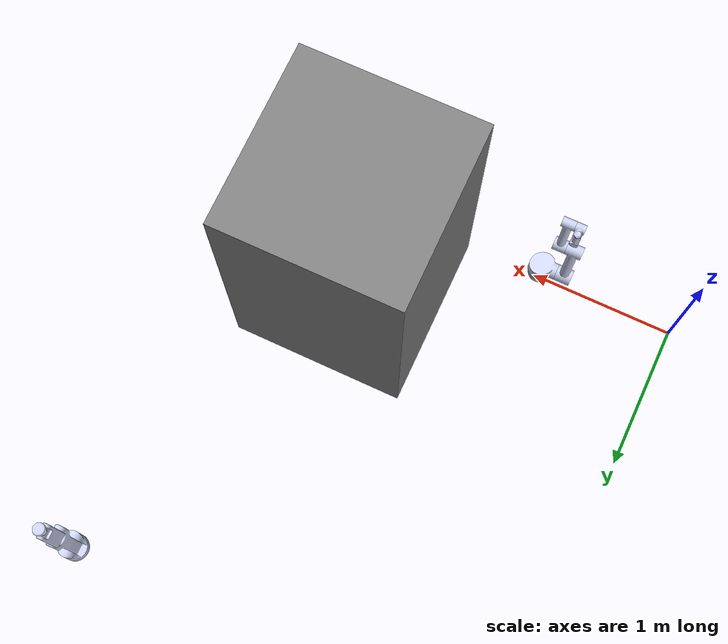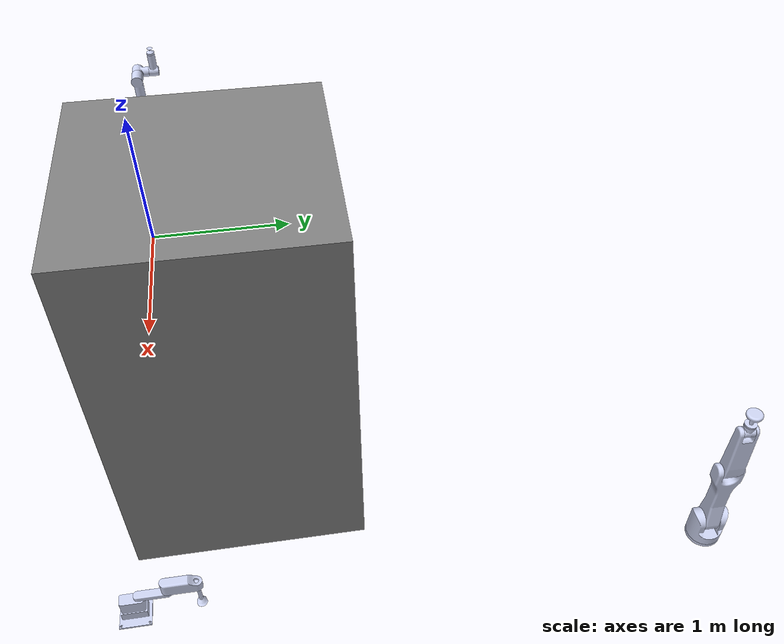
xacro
<?xml version="1.0" encoding="utf-8"?>
<robot
  name="station_robots">

<link name="base_link"/>

<joint name="frame_to_base_link" type="fixed">
    <parent link="base_link"/>
    <child link="static_frame"/>
    <origin xyz="0 1.2 0" rpy="1.57 0 0"/>
</joint>

<joint name="scara_base_to_base_link" type="fixed">
    <origin xyz="3 0 0" rpy="0 0 0"/>
    <parent link="base_link"/>
    <child link="scara_base_link"/>
</joint>

<joint name="handler_base_to_base_link" type="fixed">
    <origin xyz="0.963 0.27 0.9" rpy="0 0 0"/> <!-- adjust xyz if needed -->
    <parent link="base_link"/>
    <child link="handler_base_link"/>
</joint>

<joint name="polisher_base_to_base_link" type="fixed">
    <origin xyz="3 3 0" rpy="0 0 0"/> <!-- adjust xyz if needed -->
    <parent link="base_link"/>
    <child link="polisher_base_link"/>
</joint>

<link name="static_frame">
  <visual>
    <origin xyz="1.5 0 0" rpy="0 0 0"/>
    <geometry>
      <mesh filename="package://polishing_station/objects/meshes/machine.stl"/>
    </geometry>
    <material name="grey">
      <color rgba="0.5 0.5 0.5 1"/>
    </material>
  </visual>
  <collision>
    <origin xyz="1.5 0 0" rpy="0 0 0"/>
    <geometry>
      <mesh filename="package://polishing_station/objects/meshes/machine.stl"/>
    </geometry>
  </collision>
  <inertial>
    <mass value="10"/>
    <origin xyz="0 0 0" rpy="0 0 0"/>
    <inertia ixx="0.1" ixy="0" ixz="0" iyy="0.1" iyz="0" izz="0.1"/>
  </inertial>
</link>

  <link
    name="scara_base_link">
    <inertial>
      <origin
        xyz="4.9228E-19 0.057416 0.00026601"
        rpy="0 0 0" />
      <mass
        value="1.2659" />
      <inertia
        ixx="0.0041167"
        ixy="1.7022E-19"
        ixz="-1.4674E-19"
        iyy="0.0027026"
        iyz="-2.6126E-05"
        izz="0.0031757" />
    </inertial>
    <visual>
      <origin
        xyz="0 0 0"
        rpy="0 0 0" />
      <geometry>
        <mesh
          filename="package://polishing_station/scara/meshes/base_link.STL" />
      </geometry>
      <material
        name="">
        <color
          rgba="0.79216 0.81961 0.93333 1" />
      </material>
    </visual>
    <collision>
      <origin
        xyz="0 0 0"
        rpy="0 0 0" />
      <geometry>
        <mesh
          filename="package://polishing_station/scara/meshes/base_link.STL" />
      </geometry>
    </collision>
  </link>
  <link
    name="scara_L1">
    <inertial>
      <origin
        xyz="0.067038 0.023797 -3.8903E-18"
        rpy="0 0 0" />
      <mass
        value="0.23993" />
      <inertia
        ixx="5.7474E-05"
        ixy="-5.325E-06"
        ixz="3.6951E-20"
        iyy="0.00068723"
        iyz="-2.0839E-21"
        izz="0.00066974" />
    </inertial>
    <visual>
      <origin
        xyz="0 0 0"
        rpy="0 0 0" />
      <geometry>
        <mesh
          filename="package://polishing_station/scara/meshes/L1.STL" />
      </geometry>
      <material
        name="">
        <color
          rgba="0.79216 0.81961 0.93333 1" />
      </material>
    </visual>
    <collision>
      <origin
        xyz="0 0 0"
        rpy="0 0 0" />
      <geometry>
        <mesh
          filename="package://polishing_station/scara/meshes/L1.STL" />
      </geometry>
    </collision>
  </link>
  <joint
    name="scara_J1"
    type="revolute">
    <origin
      xyz="0 0.035 0.13"
      rpy="1.5708 0 1.5708" />
    <parent
      link="scara_base_link" />
    <child
      link="scara_L1" />
    <axis
      xyz="0 1 0" />
    <limit
      lower="-3.141"
      upper="3.141"
      effort="5"
      velocity="1" />
  </joint>
  <link
    name="scara_L2">
    <inertial>
      <origin
        xyz="0.065399 0.047234 -3.984E-08"
        rpy="0 0 0" />
      <mass
        value="0.76354" />
      <inertia
        ixx="0.00057749"
        ixy="8.8165E-05"
        ixz="-6.814E-10"
        iyy="0.0023115"
        iyz="8.1844E-10"
        izz="0.00252" />
    </inertial>
    <visual>
      <origin
        xyz="0 0 0"
        rpy="0 0 0" />
      <geometry>
        <mesh
          filename="package://polishing_station/scara/meshes/L2.STL" />
      </geometry>
      <material
        name="">
        <color
          rgba="0.79216 0.81961 0.93333 1" />
      </material>
    </visual>
    <collision>
      <origin
        xyz="0 0 0"
        rpy="0 0 0" />
      <geometry>
        <mesh
          filename="package://polishing_station/scara/meshes/L2.STL" />
      </geometry>
    </collision>
  </link>
  <joint
    name="scara_J2"
    type="revolute">
    <origin
      xyz="0.14577 0.03 0"
      rpy="0 0 0" />
    <parent
      link="scara_L1" />
    <child
      link="scara_L2" />
    <axis
      xyz="0 1 0" />
    <limit
      lower="-3.141"
      upper="3.141"
      effort="5"
      velocity="1" />
  </joint>
  <link
    name="scara_L3">
    <inertial>
      <origin
        xyz="5.5511E-17 -0.025 7.9337E-17"
        rpy="0 0 0" />
      <mass
        value="0.0088357" />
      <inertia
        ixx="2.4068E-06"
        ixy="-8.4801E-38"
        ixz="7.053E-38"
        iyy="1.1321E-06"
        iyz="-4.208E-22"
        izz="2.4068E-06" />
    </inertial>
    <visual>
      <origin
        xyz="0 0 0"
        rpy="0 0 0" />
      <geometry>
        <mesh
          filename="package://polishing_station/scara/meshes/L3.STL" />
      </geometry>
      <material
        name="">
        <color
          rgba="0.79216 0.81961 0.93333 1" />
      </material>
    </visual>
    <collision>
      <origin
        xyz="0 0 0"
        rpy="0 0 0" />
      <geometry>
        <mesh
          filename="package://polishing_station/scara/meshes/L3.STL" />
      </geometry>
    </collision>
  </link>
  <joint
    name="scara_J3"
    type="revolute">
    <origin
      xyz="0.15 0.01 0"
      rpy="0 0 3.1416" />
    <parent
      link="scara_L2" />
    <child
      link="scara_L3" />
    <axis
      xyz="0 1 0" />
    <limit
      lower="-3.141"
      upper="3.141"
      effort="5"
      velocity="1" />
  </joint>
  <link
    name="scara_L4">
    <inertial>
      <origin
        xyz="-2.7756E-16 0.06838 2.6195E-17"
        rpy="0 0 0" />
      <mass
        value="0.079259" />
      <inertia
        ixx="0.00031643"
        ixy="2.2941E-21"
        ixz="0"
        iyy="7.481E-06"
        iyz="-7.5439E-20"
        izz="0.00031643" />
    </inertial>
    <visual>
      <origin
        xyz="0 0 0"
        rpy="0 0 0" />
      <geometry>
        <mesh
          filename="package://polishing_station/scara/meshes/L4.STL" />
      </geometry>
      <material
        name="">
        <color
          rgba="0.79216 0.81961 0.93333 1" />
      </material>
    </visual>
    <collision>
      <origin
        xyz="0 0 0"
        rpy="0 0 0" />
      <geometry>
        <mesh
          filename="package://polishing_station/scara/meshes/L4.STL" />
      </geometry>
    </collision>
  </link>
  <joint
    name="scara_J4"
    type="prismatic">
    <origin
      xyz="0 0 0"
      rpy="0 0 0" />
    <parent
      link="scara_L3" />
    <child
      link="scara_L4" />
    <axis
      xyz="0 1 0" />
    <limit
      lower="-0.12"
      upper="0"
      effort="5"
      velocity="1" />
  </joint>

  <link
    name="handler_base_link">
    <inertial>
      <origin
        xyz="2.988E-34 -0.017081 3.8741E-19"
        rpy="0 0 0" />
      <mass
        value="0.92342" />
      <inertia
        ixx="0.0014784"
        ixy="-1.0796E-35"
        ixz="1.5674E-35"
        iyy="0.0023047"
        iyz="-1.9374E-20"
        izz="0.0014784" />
    </inertial>
    <visual>
      <origin
        xyz="0 0 0"
        rpy="0 0 0" />
      <geometry>
        <mesh
          filename="package://polishing_station/handler/meshes/base_link.STL" />
      </geometry>
      <material
        name="">
        <color
          rgba="0.79216 0.81961 0.93333 1" />
      </material>
    </visual>
    <collision>
      <origin
        xyz="0 0 0"
        rpy="0 0 0" />
      <geometry>
        <mesh
          filename="package://polishing_station/handler/meshes/base_link.STL" />
      </geometry>
    </collision>
  </link>
  <link
    name="handler_L1">
    <inertial>
      <origin
        xyz="-0.010562 0.058034 2.1487E-08"
        rpy="0 0 0" />
      <mass
        value="2.1518" />
      <inertia
        ixx="0.0052232"
        ixy="0.0006223"
        ixz="-3.1183E-09"
        iyy="0.0067656"
        iyz="5.2126E-09"
        izz="0.0060009" />
    </inertial>
    <visual>
      <origin
        xyz="0 0 0"
        rpy="0 0 0" />
      <geometry>
        <mesh
          filename="package://polishing_station/handler/meshes/L1.STL" />
      </geometry>
      <material
        name="">
        <color
          rgba="0.79216 0.81961 0.93333 1" />
      </material>
    </visual>
    <collision>
      <origin
        xyz="0 0 0"
        rpy="0 0 0" />
      <geometry>
        <mesh
          filename="package://polishing_station/handler/meshes/L1.STL" />
      </geometry>
    </collision>
  </link>
  <joint
    name="handler_J1"
    type="revolute">
    <origin
      xyz="0 0 0.01"
      rpy="1.5708 0 0" />
    <parent
      link="handler_base_link" />
    <child
      link="handler_L1" />
    <axis
      xyz="0 1 0" />
    <limit
      lower="-3.141"
      upper="3.141"
      effort="5"
      velocity="1" />
    <dynamics
      damping="1"
      friction="1" />
  </joint>
  <link
    name="handler_L2">
    <inertial>
      <origin
        xyz="0.059363 8.6014E-08 -0.19267"
        rpy="0 0 0" />
      <mass
        value="2.3432" />
      <inertia
        ixx="0.077054"
        ixy="4.3641E-10"
        ixz="0.00086007"
        iyy="0.077511"
        iyz="7.6816E-09"
        izz="0.0023404" />
    </inertial>
    <visual>
      <origin
        xyz="0 0 0"
        rpy="0 0 0" />
      <geometry>
        <mesh
          filename="package://polishing_station/handler/meshes/L2.STL" />
      </geometry>
      <material
        name="">
        <color
          rgba="0.79216 0.81961 0.93333 1" />
      </material>
    </visual>
    <collision>
      <origin
        xyz="0 0 0"
        rpy="0 0 0" />
      <geometry>
        <mesh
          filename="package://polishing_station/handler/meshes/L2.STL" />
      </geometry>
    </collision>
  </link>
  <joint
    name="handler_J2"
    type="revolute">
    <origin
      xyz="-0.09 0.07 0"
      rpy="-1.5708 0 3.1416" />
    <parent
      link="handler_L1" />
    <child
      link="handler_L2" />
    <axis
      xyz="1 0 0" />
    <limit
      lower="-3.141"
      upper="3.141"
      effort="5"
      velocity="1" />
    <dynamics
      damping="1"
      friction="1" />
  </joint>
  <link
    name="handler_L3">
    <inertial>
      <origin
        xyz="-0.029308 0.14601 -1.9972E-07"
        rpy="0 0 0" />
      <mass
        value="1.2035" />
      <inertia
        ixx="0.023041"
        ixy="0.0002755"
        ixz="5.9887E-09"
        iyy="0.00076928"
        iyz="6.6759E-09"
        izz="0.023199" />
    </inertial>
    <visual>
      <origin
        xyz="0 0 0"
        rpy="0 0 0" />
      <geometry>
        <mesh
          filename="package://polishing_station/handler/meshes/L3.STL" />
      </geometry>
      <material
        name="">
        <color
          rgba="0.79216 0.81961 0.93333 1" />
      </material>
    </visual>
    <collision>
      <origin
        xyz="0 0 0"
        rpy="0 0 0" />
      <geometry>
        <mesh
          filename="package://polishing_station/handler/meshes/L3.STL" />
      </geometry>
    </collision>
  </link>
  <joint
    name="handler_J3"
    type="revolute">
    <origin
      xyz="0 0 -0.45"
      rpy="-1.5708 0 0" />
    <parent
      link="handler_L2" />
    <child
      link="handler_L3" />
    <axis
      xyz="1 0 0" />
    <limit
      lower="-3.141"
      upper="3.141"
      effort="5"
      velocity="1" />
    <dynamics
      damping="1"
      friction="1" />
  </joint>
  <link
    name="handler_L4">
    <inertial>
      <origin
        xyz="0.038122 -6.5766E-09 0.0090201"
        rpy="0 0 0" />
      <mass
        value="0.23425" />
      <inertia
        ixx="0.00015933"
        ixy="3.1181E-11"
        ixz="-3.9672E-06"
        iyy="0.00018421"
        iyz="-1.9002E-11"
        izz="0.0001233" />
    </inertial>
    <visual>
      <origin
        xyz="0 0 0"
        rpy="0 0 0" />
      <geometry>
        <mesh
          filename="package://polishing_station/handler/meshes/L4.STL" />
      </geometry>
      <material
        name="">
        <color
          rgba="0.79216 0.81961 0.93333 1" />
      </material>
    </visual>
    <collision>
      <origin
        xyz="0 0 0"
        rpy="0 0 0" />
      <geometry>
        <mesh
          filename="package://polishing_station/handler/meshes/L4.STL" />
      </geometry>
    </collision>
  </link>
  <joint
    name="handler_J4"
    type="revolute">
    <origin
      xyz="0 0.35 0"
      rpy="0 0 0" />
    <parent
      link="handler_L3" />
    <child
      link="handler_L4" />
    <axis
      xyz="1 0 0" />
    <limit
      lower="-3.141"
      upper="3.141"
      effort="5"
      velocity="1" />
    <dynamics
      damping="1"
      friction="1" />
  </joint>
  <link
    name="handler_L5">
    <inertial>
      <origin
        xyz="0.027463 -8.8585E-09 -0.033154"
        rpy="0 0 0" />
      <mass
        value="0.20423" />
      <inertia
        ixx="6.697E-05"
        ixy="-1.8659E-10"
        ixz="1.0354E-05"
        iyy="0.0002833"
        iyz="2.5719E-10"
        izz="0.00026912" />
    </inertial>
    <visual>
      <origin
        xyz="0 0 0"
        rpy="0 0 0" />
      <geometry>
        <mesh
          filename="package://polishing_station/handler/meshes/L5.STL" />
      </geometry>
      <material
        name="">
        <color
          rgba="0.79216 0.81961 0.93333 1" />
      </material>
    </visual>
    <collision>
      <origin
        xyz="0 0 0"
        rpy="0 0 0" />
      <geometry>
        <mesh
          filename="package://polishing_station/handler/meshes/L5.STL" />
      </geometry>
    </collision>
  </link>
  <joint
    name="handler_J5"
    type="revolute">
    <origin
      xyz="0.04 0 0.05"
      rpy="3.1416 0 1.5708" />
    <parent
      link="handler_L4" />
    <child
      link="handler_L5" />
    <axis
      xyz="0 0 1" />
    <limit
      lower="-3.141"
      upper="3.141"
      effort="5"
      velocity="1" />
    <dynamics
      damping="1"
      friction="1" />
  </joint>
  <link
    name="handler_L6">
    <inertial>
      <origin
        xyz="-1.3878E-17 0.01201 8.3267E-17"
        rpy="0 0 0" />
      <mass
        value="0.02287" />
      <inertia
        ixx="3.033E-06"
        ixy="2.7708E-22"
        ixz="6.3545E-37"
        iyy="3.6242E-06"
        iyz="7.5673E-22"
        izz="3.033E-06" />
    </inertial>
    <visual>
      <origin
        xyz="0 0 0"
        rpy="0 0 0" />
      <geometry>
        <mesh
          filename="package://polishing_station/handler/meshes/L6.STL" />
      </geometry>
      <material
        name="">
        <color
          rgba="0.79216 0.81961 0.93333 1" />
      </material>
    </visual>
    <collision>
      <origin
        xyz="0 0 0"
        rpy="0 0 0" />
      <geometry>
        <mesh
          filename="package://polishing_station/handler/meshes/L6.STL" />
      </geometry>
    </collision>
  </link>
  <joint
    name="handler_J6"
    type="revolute">
    <origin
      xyz="0.095 0 -0.035"
      rpy="1.5708 1.5708 0" />
    <parent
      link="handler_L5" />
    <child
      link="handler_L6" />
    <axis
      xyz="0 1 0" />
    <limit
      lower="-3.141"
      upper="3.141"
      effort="5"
      velocity="1" />
    <dynamics
      damping="1"
      friction="1" />
  </joint>

<link
    name="polisher_base_link">
    <inertial>
      <origin
        xyz="1.1824E-34 0.0020988 -8.1451E-18"
        rpy="0 0 0" />
      <mass
        value="0.50894" />
      <inertia
        ixx="0.001056"
        ixy="-2.9324E-36"
        ixz="7.2641E-36"
        iyy="0.0020612"
        iyz="2.0746E-20"
        izz="0.001056" />
    </inertial>
    <visual>
      <origin
        xyz="0 0 0"
        rpy="0 0 0" />
      <geometry>
        <mesh
          filename="package://polishing_station/polisher/meshes/base_link.STL" />
      </geometry>
      <material
        name="">
        <color
          rgba="0.79216 0.81961 0.93333 1" />
      </material>
    </visual>
    <collision>
      <origin
        xyz="0 0 0"
        rpy="0 0 0" />
      <geometry>
        <mesh
          filename="package://polishing_station/polisher/meshes/base_link.STL" />
      </geometry>
    </collision>
  </link>
  <link
    name="polisher_L1">
    <inertial>
      <origin
        xyz="2.609E-07 0.069404 3.3533E-08"
        rpy="0 0 0" />
      <mass
        value="2.6203" />
      <inertia
        ixx="0.01468"
        ixy="-4.4372E-08"
        ixz="-6.9928E-10"
        iyy="0.011798"
        iyz="-7.3338E-10"
        izz="0.011038" />
    </inertial>
    <visual>
      <origin
        xyz="0 0 0"
        rpy="0 0 0" />
      <geometry>
        <mesh
          filename="package://polishing_station/polisher/meshes/L1.STL" />
      </geometry>
      <material
        name="">
        <color
          rgba="0.79216 0.81961 0.93333 1" />
      </material>
    </visual>
    <collision>
      <origin
        xyz="0 0 0"
        rpy="0 0 0" />
      <geometry>
        <mesh
          filename="package://polishing_station/polisher/meshes/L1.STL" />
      </geometry>
    </collision>
  </link>
  <joint
    name="polisher_J1"
    type="revolute">
    <origin
      xyz="0 0 0.01"
      rpy="1.5708 0 0" />
    <parent
      link="polisher_base_link" />
    <child
      link="polisher_L1" />
    <axis
      xyz="0 1 0" />
    <limit
      lower="-3.141"
      upper="3.141"
      effort="5"
      velocity="1" />
  </joint>
  <link
    name="polisher_L2">
    <inertial>
      <origin
        xyz="2.5758E-09 -2.0066E-08 -0.17282"
        rpy="0 0 0" />
      <mass
        value="3.6365" />
      <inertia
        ixx="0.077736"
        ixy="-1.0778E-10"
        ixz="-4.0562E-10"
        iyy="0.078819"
        iyz="1.4721E-08"
        izz="0.0059647" />
    </inertial>
    <visual>
      <origin
        xyz="0 0 0"
        rpy="0 0 0" />
      <geometry>
        <mesh
          filename="package://polishing_station/polisher/meshes/L2.STL" />
      </geometry>
      <material
        name="">
        <color
          rgba="0.79216 0.81961 0.93333 1" />
      </material>
    </visual>
    <collision>
      <origin
        xyz="0 0 0"
        rpy="0 0 0" />
      <geometry>
        <mesh
          filename="package://polishing_station/polisher/meshes/L2.STL" />
      </geometry>
    </collision>
  </link>
  <joint
    name="polisher_J2"
    type="revolute">
    <origin
      xyz="0 0.13062 0"
      rpy="1.5708 -1.5708 0" />
    <parent
      link="polisher_L1" />
    <child
      link="polisher_L2" />
    <axis
      xyz="1 0 0" />
    <limit
      lower="-3.141"
      upper="3.141"
      effort="5"
      velocity="1" />
  </joint>
  <link
    name="polisher_L3">
    <inertial>
      <origin
        xyz="0.01 7.4465E-08 -0.11079"
        rpy="0 0 0" />
      <mass
        value="2.2512" />
      <inertia
        ixx="0.019258"
        ixy="-2.3005E-09"
        ixz="4.644E-09"
        iyy="0.020386"
        iyz="1.9429E-09"
        izz="0.0030744" />
    </inertial>
    <visual>
      <origin
        xyz="0 0 0"
        rpy="0 0 0" />
      <geometry>
        <mesh
          filename="package://polishing_station/polisher/meshes/L3.STL" />
      </geometry>
      <material
        name="">
        <color
          rgba="0.79216 0.81961 0.93333 1" />
      </material>
    </visual>
    <collision>
      <origin
        xyz="0 0 0"
        rpy="0 0 0" />
      <geometry>
        <mesh
          filename="package://polishing_station/polisher/meshes/L3.STL" />
      </geometry>
    </collision>
  </link>
  <joint
    name="polisher_J3"
    type="revolute">
    <origin
      xyz="0 0 -0.425"
      rpy="0 0 -3.1416" />
    <parent
      link="polisher_L2" />
    <child
      link="polisher_L3" />
    <axis
      xyz="1 0 0" />
    <limit
      lower="-3.141"
      upper="3.141"
      effort="5"
      velocity="1" />
  </joint>
  <link
    name="polisher_L4">
    <inertial>
      <origin
        xyz="-0.01 5.9649E-08 -0.0081105"
        rpy="0 0 0" />
      <mass
        value="0.22465" />
      <inertia
        ixx="0.00012689"
        ixy="-1.3381E-10"
        ixz="-6.8739E-12"
        iyy="0.00017646"
        iyz="7.2481E-11"
        izz="0.00013362" />
    </inertial>
    <visual>
      <origin
        xyz="0 0 0"
        rpy="0 0 0" />
      <geometry>
        <mesh
          filename="package://polishing_station/polisher/meshes/L4.STL" />
      </geometry>
      <material
        name="">
        <color
          rgba="0.79216 0.81961 0.93333 1" />
      </material>
    </visual>
    <collision>
      <origin
        xyz="0 0 0"
        rpy="0 0 0" />
      <geometry>
        <mesh
          filename="package://polishing_station/polisher/meshes/L4.STL" />
      </geometry>
    </collision>
  </link>
  <joint
    name="polisher_J4"
    type="revolute">
    <origin
      xyz="0 0 -0.3"
      rpy="0 0 3.1416" />
    <parent
      link="polisher_L3" />
    <child
      link="polisher_L4" />
    <axis
      xyz="1 0 0" />
    <limit
      lower="-3.141"
      upper="3.141"
      effort="5"
      velocity="1" />
  </joint>
  <link
    name="polisher_L5">
    <inertial>
      <origin
        xyz="1.2143E-17 -4.5869E-16 -0.058396"
        rpy="0 0 0" />
      <mass
        value="0.16928" />
      <inertia
        ixx="0.00020457"
        ixy="8.4957E-21"
        ixz="1.5658E-20"
        iyy="0.00020457"
        iyz="3.1565E-21"
        izz="0.00010248" />
    </inertial>
    <visual>
      <origin
        xyz="0 0 0"
        rpy="0 0 0" />
      <geometry>
        <mesh
          filename="package://polishing_station/polisher/meshes/L5.STL" />
      </geometry>
      <material
        name="">
        <color
          rgba="0.79216 0.81961 0.93333 1" />
      </material>
    </visual>
    <collision>
      <origin
        xyz="0 0 0"
        rpy="0 0 0" />
      <geometry>
        <mesh
          filename="package://polishing_station/polisher/meshes/L5.STL" />
      </geometry>
    </collision>
  </link>
  <joint
    name="polisher_J5"
    type="revolute">
    <origin
      xyz="-0.01 0 -0.045"
      rpy="0 0 -3.1416" />
    <parent
      link="polisher_L4" />
    <child
      link="polisher_L5" />
    <axis
      xyz="0 0 1" />
    <limit
      lower="-3.141"
      upper="3.141"
      effort="5"
      velocity="1" />
  </joint>

</robot>
